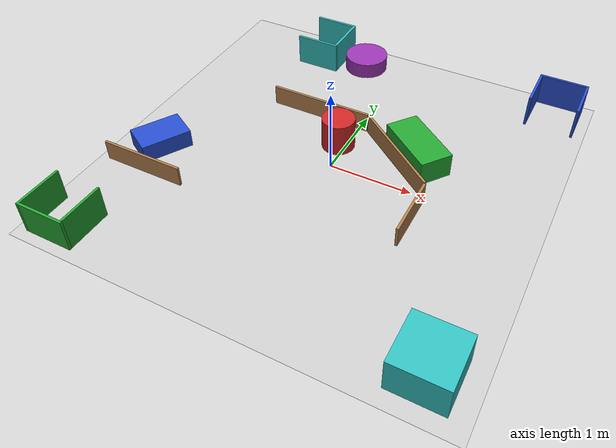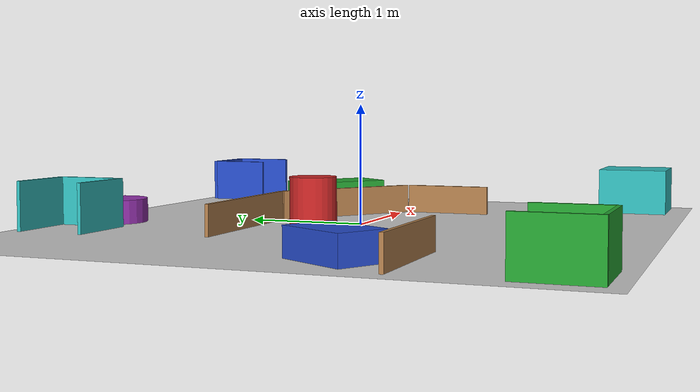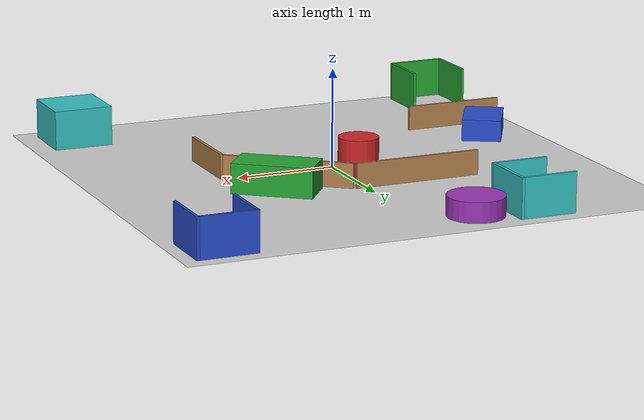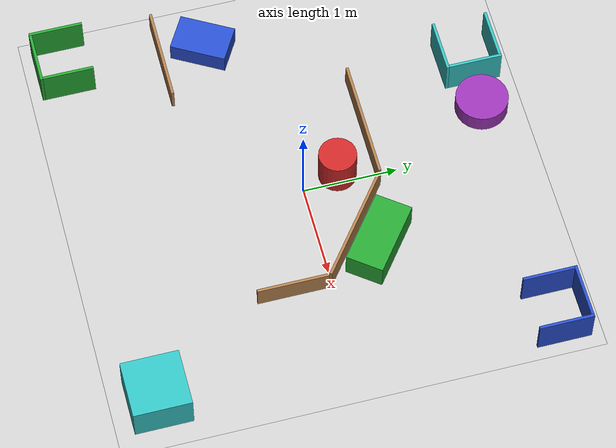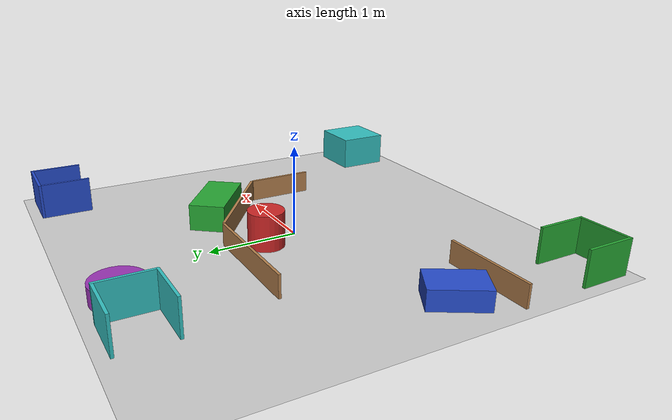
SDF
<?xml version="1.0"?>
<sdf version="1.4">
<model name="beaconing">
  <static>true</static>
    <link name="floor">
      <collision name="collision">
        <geometry>
          <plane>
            <normal>0 0 1</normal>
            <size>5.0 5.0</size>
          </plane>
        </geometry>
        <surface>
          <friction>
            <ode>
              <mu>100</mu>
              <mu2>50</mu2>
            </ode>
          </friction>
        </surface>
      </collision>
      <visual name="visual">
        <cast_shadows>false</cast_shadows>
        <geometry>
          <plane>
            <normal>0 0 1</normal>
            <size>5.0 5.0</size>
          </plane>
        </geometry>
        <material>
          <script>
            <uri>model://beaconing/materials/scripts</uri>
            <uri>model://beaconing/materials/textures</uri>
            <name>BeaconingFloor/Image</name>
          </script>
        </material>
      </visual>
    </link>
    <link name='start_zone_A'>
      <pose frame=''>-2.06729 -2.09253 0.2 0 0 1.571</pose>
      <collision name='Right_Wall_Collision'>
        <geometry>
          <box>
            <size>0.57 0.03 0.4</size>
          </box>
        </geometry>
        <pose frame=''>0 0.2850 0 0 0 0</pose>
      </collision>
      <visual name='Right_Wall_Visual'>
        <pose frame=''>0 0.2850 0 0 0 0</pose>
        <geometry>
          <box>
            <size>0.57 0.03 0.4</size>
          </box>
        </geometry>
        <material>
          <script>
            <uri>file://media/materials/scripts/gazebo.material</uri>
            <name>Gazebo/Green</name>
          </script>
        </material>
      </visual>
      <collision name='Back_Wall_Collision'>
        <geometry>
          <box>
            <size>0.57 0.03 0.4</size>
          </box>
        </geometry>
        <pose frame=''>-0.27 -0.015 0 0 0 1.571</pose>
      </collision>
      <visual name='Back_Wall_Visual'>
        <pose frame=''>-0.27 -0.015 0 0 0 1.571</pose>
        <geometry>
          <box>
            <size>0.57 0.03 0.4</size>
          </box>
        </geometry>
        <material>
          <script>
            <uri>file://media/materials/scripts/gazebo.material</uri>
            <name>Gazebo/Green</name>
          </script>
        </material>
      </visual>
      <collision name='Left_Wall_Collision'>
        <geometry>
          <box>
            <size>0.54 0.03 0.4</size>
          </box>
        </geometry>
        <pose frame=''>0.015 -0.285 0 0 0 0</pose>
      </collision>
      <visual name='Left_Wall_Visual'>
        <pose frame=''>0.015 -0.285 0 0 0 0</pose>
        <geometry>
          <box>
            <size>0.54 0.03 0.4</size>
          </box>
        </geometry>
        <material>
          <script>
            <uri>file://media/materials/scripts/gazebo.material</uri>
            <name>Gazebo/Green</name>
          </script>
        </material>
      </visual>
    </link>
    <link name='start_zone_B'>
      <pose frame=''>-1.12187 2.06729 0.2 0 0 3.142</pose>
      <collision name='Right_Wall_Collision'>
        <geometry>
          <box>
            <size>0.57 0.03 0.4</size>
          </box>
        </geometry>
        <pose frame=''>0 0.2850 0 0 0 0</pose>
      </collision>
      <visual name='Right_Wall_Visual'>
        <pose frame=''>0 0.2850 0 0 0 0</pose>
        <geometry>
          <box>
            <size>0.57 0.03 0.4</size>
          </box>
        </geometry>
        <material>
          <script>
            <uri>file://media/materials/scripts/gazebo.material</uri>
            <name>Gazebo/Turquoise</name>
          </script>
        </material>
      </visual>
      <collision name='Back_Wall_Collision'>
        <geometry>
          <box>
            <size>0.57 0.03 0.4</size>
          </box>
        </geometry>
        <pose frame=''>-0.27 -0.015 0 0 0 1.571</pose>
      </collision>
      <visual name='Back_Wall_Visual'>
        <pose frame=''>-0.27 -0.015 0 0 0 1.571</pose>
        <geometry>
          <box>
            <size>0.57 0.03 0.4</size>
          </box>
        </geometry>
        <material>
          <script>
            <uri>file://media/materials/scripts/gazebo.material</uri>
            <name>Gazebo/Turquoise</name>
          </script>
        </material>
      </visual>
      <collision name='Left_Wall_Collision'>
        <geometry>
          <box>
            <size>0.54 0.03 0.4</size>
          </box>
        </geometry>
        <pose frame=''>0.015 -0.285 0 0 0 0</pose>
      </collision>
      <visual name='Left_Wall_Visual'>
        <pose frame=''>0.015 -0.285 0 0 0 0</pose>
        <geometry>
          <box>
            <size>0.54 0.03 0.4</size>
          </box>
        </geometry>
        <material>
          <script>
            <uri>file://media/materials/scripts/gazebo.material</uri>
            <name>Gazebo/Turquoise</name>
          </script>
        </material>
      </visual>
    </link>
    <link name='start_zone_C'>
      <pose frame=''>2.06729 2.09253 0.2 0 0 -1.571</pose>
      <collision name='Right_Wall_Collision'>
        <geometry>
          <box>
            <size>0.57 0.03 0.4</size>
          </box>
        </geometry>
        <pose frame=''>0 0.2850 0 0 0 0</pose>
      </collision>
      <visual name='Right_Wall_Visual'>
        <pose frame=''>0 0.2850 0 0 0 0</pose>
        <geometry>
          <box>
            <size>0.57 0.03 0.4</size>
          </box>
        </geometry>
        <material>
          <script>
            <uri>file://media/materials/scripts/gazebo.material</uri>
            <name>Gazebo/Blue</name>
          </script>
        </material>
      </visual>
      <collision name='Back_Wall_Collision'>
        <geometry>
          <box>
            <size>0.57 0.03 0.4</size>
          </box>
        </geometry>
        <pose frame=''>-0.27 -0.015 0 0 0 1.571</pose>
      </collision>
      <visual name='Back_Wall_Visual'>
        <pose frame=''>-0.27 -0.015 0 0 0 1.571</pose>
        <geometry>
          <box>
            <size>0.57 0.03 0.4</size>
          </box>
        </geometry>
        <material>
          <script>
            <uri>file://media/materials/scripts/gazebo.material</uri>
            <name>Gazebo/Blue</name>
          </script>
        </material>
      </visual>
      <collision name='Left_Wall_Collision'>
        <geometry>
          <box>
            <size>0.54 0.03 0.4</size>
          </box>
        </geometry>
        <pose frame=''>0.015 -0.285 0 0 0 0</pose>
      </collision>
      <visual name='Left_Wall_Visual'>
        <pose frame=''>0.015 -0.285 0 0 0 0</pose>
        <geometry>
          <box>
            <size>0.54 0.03 0.4</size>
          </box>
        </geometry>
        <material>
          <script>
            <uri>file://media/materials/scripts/gazebo.material</uri>
            <name>Gazebo/Blue</name>
          </script>
        </material>
      </visual>
    </link>
    <link name='wall_1'>
      <pose frame=''>-1.86568 -1.06347 0.125 0 0 0</pose>
      <collision name='coll'>
        <geometry>
          <box>
            <size>1.03 0.03 0.25</size>
          </box>
        </geometry>
      </collision>
      <visual name='vis'>
        <geometry>
          <box>
            <size>1.03 0.03 0.25</size>
          </box>
        </geometry>
        <material>
          <script>
            <uri>file://media/materials/scripts/gazebo.material</uri>
            <name>Gazebo/Wood</name>
          </script>
        </material>
      </visual>
    </link>
    <link name='wall_2'>
      <pose frame=''>-0.54713 0.78466 0.125 0 0 0</pose>
      <collision name='coll'>
        <geometry>
          <box>
            <size>1.3 0.03 0.25</size>
          </box>
        </geometry>
      </collision>
      <visual name='vis'>
        <geometry>
          <box>
            <size>1.3 0.03 0.25</size>
          </box>
        </geometry>
        <material>
          <script>
            <uri>file://media/materials/scripts/gazebo.material</uri>
            <name>Gazebo/Wood</name>
          </script>
        </material>
      </visual>
    </link>
    <link name='wall_3'>
      <pose frame=''>1.15937 -0.41107 0.125 0 0 0</pose>
      <collision name='coll'>
        <geometry>
          <box>
            <size>0.03 0.75 0.25</size>
          </box>
        </geometry>
      </collision>
      <visual name='vis'>
        <geometry>
          <box>
            <size>0.03 0.75 0.25</size>
          </box>
        </geometry>
        <material>
          <script>
            <uri>file://media/materials/scripts/gazebo.material</uri>
            <name>Gazebo/Wood</name>
          </script>
        </material>
      </visual>
    </link>
    <link name='wall_4'>
      <pose frame=''>0.63856 0.37770 0.125 0 0 0.917</pose>
      <collision name='coll'>
        <geometry>
          <box>
            <size>0.03 1.3 0.25</size>
          </box>
        </geometry>
      </collision>
      <visual name='vis'>
        <geometry>
          <box>
            <size>0.03 1.3 0.25</size>
          </box>
        </geometry>
        <material>
          <script>
            <uri>file://media/materials/scripts/gazebo.material</uri>
            <name>Gazebo/Wood</name>
          </script>
        </material>
      </visual>
    </link>
    <link name='cyl_a'>
      <pose frame=''>-0.10077 0.38902 0.2 0 0 0</pose>
      <collision name='coll'>
        <geometry>
          <cylinder>
            <radius>0.2</radius>
            <length>0.4</length>
          </cylinder>
        </geometry>
        <max_contacts>10</max_contacts>
        <surface>
          <bounce/>
          <friction>
            <ode/>
          </friction>
          <contact>
            <ode/>
          </contact>
        </surface>
      </collision>
      <visual name='vis'>
        <geometry>
          <cylinder>
            <radius>0.2</radius>
            <length>0.4</length>
          </cylinder>
        </geometry>
        <material>
          <script>
            <uri>file://media/materials/scripts/gazebo.material</uri>
            <name>Gazebo/Red</name>
          </script>
        </material>
      </visual>
    </link>
    <link name='cyl_b'>
      <pose frame=''>-0.52038 2.06950 0.1 0 0 0</pose>
      <collision name='coll'>
        <geometry>
          <cylinder>
            <radius>0.28</radius>
            <length>0.2</length>
          </cylinder>
        </geometry>
        <max_contacts>10</max_contacts>
        <surface>
          <bounce/>
          <friction>
            <ode/>
          </friction>
          <contact>
            <ode/>
          </contact>
        </surface>
      </collision>
      <visual name='vis'>
        <geometry>
          <cylinder>
            <radius>0.28</radius>
            <length>0.2</length>
          </cylinder>
        </geometry>
        <material>
          <script>
            <uri>file://media/materials/scripts/gazebo.material</uri>
            <name>Gazebo/Purple</name>
          </script>
        </material>
      </visual>
    </link>
    <link name='box_a'>
      <pose frame=''>-1.97132 -0.59194 0.11 0 0 -0.524</pose>
      <collision name='coll'>
        <geometry>
          <box>
            <size>0.4 0.6 0.22</size>
          </box>
        </geometry>
      </collision>
      <visual name='vis'>
        <geometry>
          <box>
            <size>0.4 0.6 0.22</size>
          </box>
        </geometry>
        <material>
          <script>
            <uri>file://media/materials/scripts/gazebo.material</uri>
            <name>Gazebo/Blue</name>
          </script>
        </material>
      </visual>
    </link>
    <link name='box_b'>
      <pose frame=''>0.84056 0.57438 0.15 0 0 -0.655</pose>
      <collision name='coll'>
        <geometry>
          <box>
            <size>0.8 0.4 0.3</size>
          </box>
        </geometry>
      </collision>
      <visual name='vis'>
        <geometry>
          <box>
            <size>0.8 0.4 0.3</size>
          </box>
        </geometry>
        <material>
          <script>
            <uri>file://media/materials/scripts/gazebo.material</uri>
            <name>Gazebo/Green</name>
          </script>
        </material>
      </visual>
    </link>
    <link name='box_c'>
      <pose frame=''>1.98731 -2.01653 0.2 0 0 0</pose>
      <collision name='coll'>
        <geometry>
          <box>
            <size>0.6 0.6 0.4</size>
          </box>
        </geometry>
      </collision>
      <visual name='vis'>
        <geometry>
          <box>
            <size>0.6 0.6 0.4</size>
          </box>
        </geometry>
        <material>
          <script>
            <uri>file://media/materials/scripts/gazebo.material</uri>
            <name>Gazebo/Turquoise</name>
          </script>
        </material>
      </visual>
    </link>
  </model>
</sdf>
